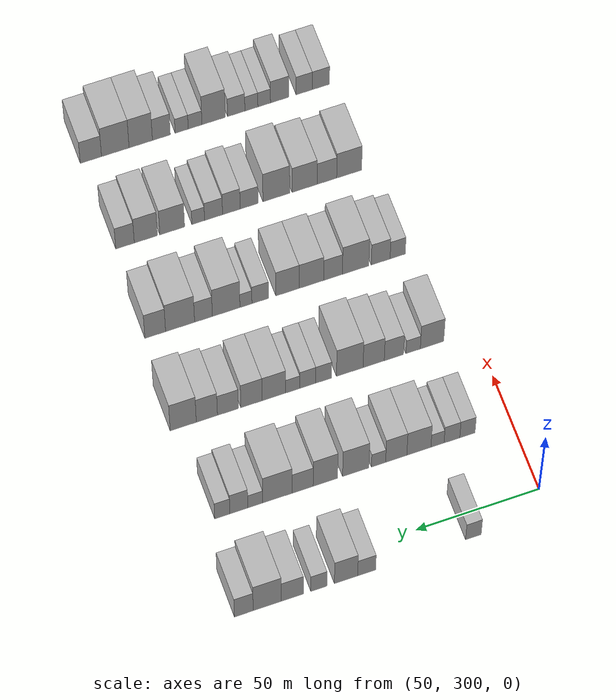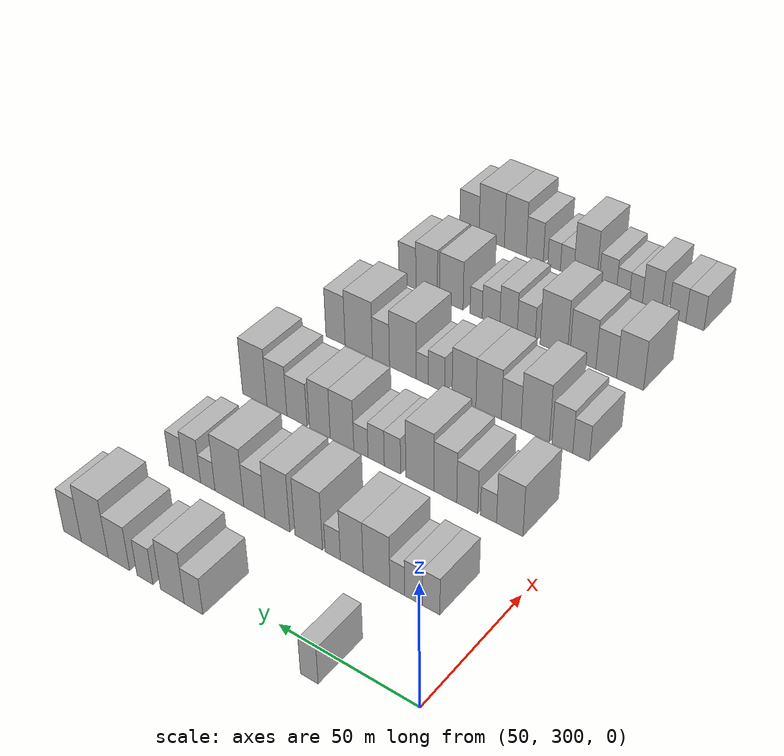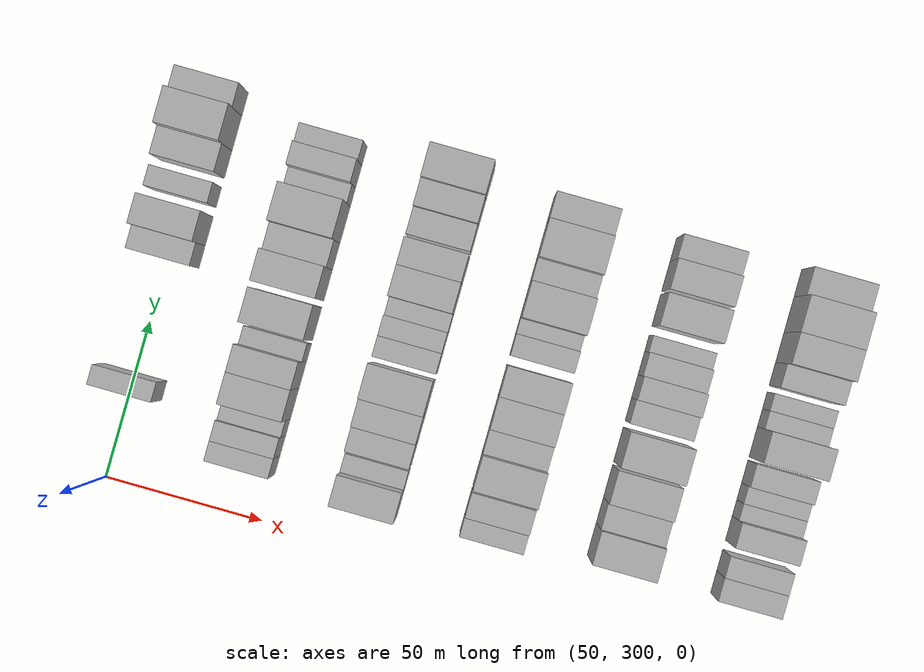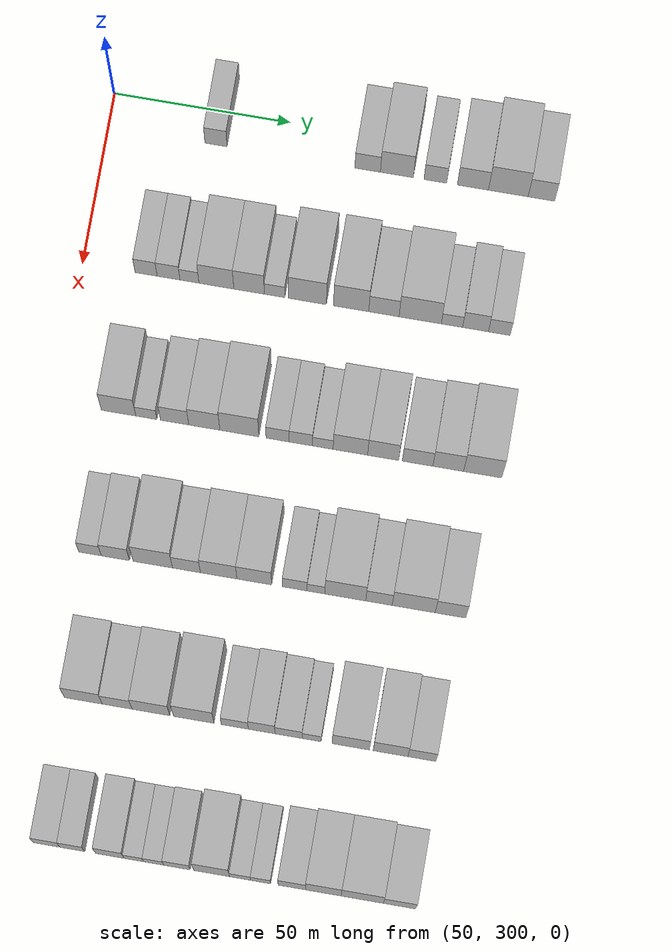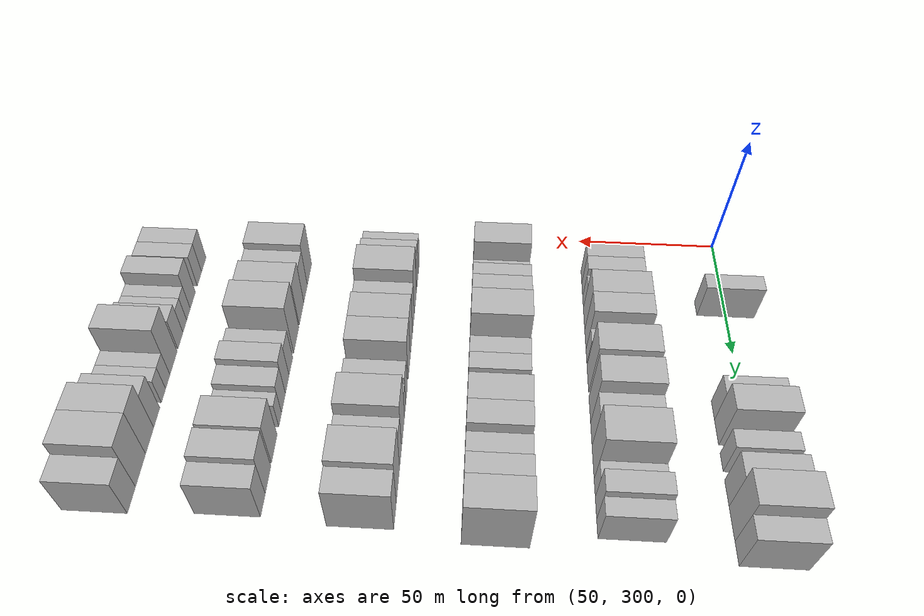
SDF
<sdf version="1.6">
 <world name="default">
  <model name="building_101">
   <static>1</static>
   <pose>50.0000 330.6214 0 0.000000 0.000000 0.000000</pose>
   <link name="link">
    <pose>0 0 7.50 0 0 0</pose>
    <collision name="collision"><geometry><box><size>20.0000 6.2988 15.0000</size></box></geometry></collision>
    <visual name="visual">
     <cast_shadows>0</cast_shadows>
     <geometry><box><size>20.0000 6.2988 15.0000</size></box></geometry>
     <material>
      <script>
       <uri>model://HANNAS_wall/materials/scripts</uri>
       <uri>model://HANNAS_wall/materials/textures</uri>
       <name>vrc/HANNAS_wall</name>
      </script>
     </material>
    </visual>
   </link>
  </model>
  <model name="building_102">
   <static>1</static>
   <pose>50.0000 373.6239 0 0.000000 0.000000 0.000000</pose>
   <link name="link">
    <pose>0 0 7.50 0 0 0</pose>
    <collision name="collision"><geometry><box><size>20.0000 7.2355 15.0000</size></box></geometry></collision>
    <visual name="visual">
     <cast_shadows>0</cast_shadows>
     <geometry><box><size>20.0000 7.2355 15.0000</size></box></geometry>
     <material>
      <script>
       <uri>model://HANNAS_wall/materials/scripts</uri>
       <uri>model://HANNAS_wall/materials/textures</uri>
       <name>vrc/HANNAS_wall</name>
      </script>
     </material>
    </visual>
   </link>
  </model>
  <model name="building_103">
   <static>1</static>
   <pose>50.0000 381.9095 0 0.000000 0.000000 0.000000</pose>
   <link name="link">
    <pose>0 0 10.50 0 0 0</pose>
    <collision name="collision"><geometry><box><size>20.0000 9.3357 21.0000</size></box></geometry></collision>
    <visual name="visual">
     <cast_shadows>0</cast_shadows>
     <geometry><box><size>20.0000 9.3357 21.0000</size></box></geometry>
     <material>
      <script>
       <uri>model://HANNAS_wall/materials/scripts</uri>
       <uri>model://HANNAS_wall/materials/textures</uri>
       <name>vrc/HANNAS_wall</name>
      </script>
     </material>
    </visual>
   </link>
  </model>
  <model name="building_104">
   <static>1</static>
   <pose>50.0000 392.7868 0 0.000000 0.000000 0.000000</pose>
   <link name="link">
    <pose>0 0 7.50 0 0 0</pose>
    <collision name="collision"><geometry><box><size>20.0000 6.4188 15.0000</size></box></geometry></collision>
    <visual name="visual">
     <cast_shadows>0</cast_shadows>
     <geometry><box><size>20.0000 6.4188 15.0000</size></box></geometry>
     <material>
      <script>
       <uri>model://HANNAS_wall/materials/scripts</uri>
       <uri>model://HANNAS_wall/materials/textures</uri>
       <name>vrc/HANNAS_wall</name>
      </script>
     </material>
    </visual>
   </link>
  </model>
  <model name="building_105">
   <static>1</static>
   <pose>50.0000 403.3970 0 0.000000 0.000000 0.000000</pose>
   <link name="link">
    <pose>0 0 9.00 0 0 0</pose>
    <collision name="collision"><geometry><box><size>20.0000 8.8015 18.0000</size></box></geometry></collision>
    <visual name="visual">
     <cast_shadows>0</cast_shadows>
     <geometry><box><size>20.0000 8.8015 18.0000</size></box></geometry>
     <material>
      <script>
       <uri>model://HANNAS_wall/materials/scripts</uri>
       <uri>model://HANNAS_wall/materials/textures</uri>
       <name>vrc/HANNAS_wall</name>
      </script>
     </material>
    </visual>
   </link>
  </model>
  <model name="building_106">
   <static>1</static>
   <pose>50.0000 413.3961 0 0.000000 0.000000 0.000000</pose>
   <link name="link">
    <pose>0 0 12.00 0 0 0</pose>
    <collision name="collision"><geometry><box><size>20.0000 11.1968 24.0000</size></box></geometry></collision>
    <visual name="visual">
     <cast_shadows>0</cast_shadows>
     <geometry><box><size>20.0000 11.1968 24.0000</size></box></geometry>
     <material>
      <script>
       <uri>model://HANNAS_wall/materials/scripts</uri>
       <uri>model://HANNAS_wall/materials/textures</uri>
       <name>vrc/HANNAS_wall</name>
      </script>
     </material>
    </visual>
   </link>
  </model>
  <model name="building_107">
   <static>1</static>
   <pose>50.0000 422.7425 0 0.000000 0.000000 0.000000</pose>
   <link name="link">
    <pose>0 0 9.00 0 0 0</pose>
    <collision name="collision"><geometry><box><size>20.0000 7.4959 18.0000</size></box></geometry></collision>
    <visual name="visual">
     <cast_shadows>0</cast_shadows>
     <geometry><box><size>20.0000 7.4959 18.0000</size></box></geometry>
     <material>
      <script>
       <uri>model://HANNAS_wall/materials/scripts</uri>
       <uri>model://HANNAS_wall/materials/textures</uri>
       <name>vrc/HANNAS_wall</name>
      </script>
     </material>
    </visual>
   </link>
  </model>
  <model name="building_233">
   <static>1</static>
   <pose>90.0000 318.0301 0 0.000000 0.000000 0.000000</pose>
   <link name="link">
    <pose>0 0 7.50 0 0 0</pose>
    <collision name="collision"><geometry><box><size>20.0000 6.2261 15.0000</size></box></geometry></collision>
    <visual name="visual">
     <cast_shadows>0</cast_shadows>
     <geometry><box><size>20.0000 6.2261 15.0000</size></box></geometry>
     <material>
      <script>
       <uri>model://HANNAS_wall/materials/scripts</uri>
       <uri>model://HANNAS_wall/materials/textures</uri>
       <name>vrc/HANNAS_wall</name>
      </script>
     </material>
    </visual>
   </link>
  </model>
  <model name="building_234">
   <static>1</static>
   <pose>90.0000 324.3517 0 0.000000 0.000000 0.000000</pose>
   <link name="link">
    <pose>0 0 7.50 0 0 0</pose>
    <collision name="collision"><geometry><box><size>20.0000 6.4171 15.0000</size></box></geometry></collision>
    <visual name="visual">
     <cast_shadows>0</cast_shadows>
     <geometry><box><size>20.0000 6.4171 15.0000</size></box></geometry>
     <material>
      <script>
       <uri>model://HANNAS_wall/materials/scripts</uri>
       <uri>model://HANNAS_wall/materials/textures</uri>
       <name>vrc/HANNAS_wall</name>
      </script>
     </material>
    </visual>
   </link>
  </model>
  <model name="building_235">
   <static>1</static>
   <pose>90.0000 330.2365 0 0.000000 0.000000 0.000000</pose>
   <link name="link">
    <pose>0 0 6.00 0 0 0</pose>
    <collision name="collision"><geometry><box><size>20.0000 5.3525 12.0000</size></box></geometry></collision>
    <visual name="visual">
     <cast_shadows>0</cast_shadows>
     <geometry><box><size>20.0000 5.3525 12.0000</size></box></geometry>
     <material>
      <script>
       <uri>model://HANNAS_wall/materials/scripts</uri>
       <uri>model://HANNAS_wall/materials/textures</uri>
       <name>vrc/HANNAS_wall</name>
      </script>
     </material>
    </visual>
   </link>
  </model>
  <model name="building_236">
   <static>1</static>
   <pose>90.0000 337.8178 0 0.000000 0.000000 0.000000</pose>
   <link name="link">
    <pose>0 0 10.50 0 0 0</pose>
    <collision name="collision"><geometry><box><size>20.0000 9.8101 21.0000</size></box></geometry></collision>
    <visual name="visual">
     <cast_shadows>0</cast_shadows>
     <geometry><box><size>20.0000 9.8101 21.0000</size></box></geometry>
     <material>
      <script>
       <uri>model://HANNAS_wall/materials/scripts</uri>
       <uri>model://HANNAS_wall/materials/textures</uri>
       <name>vrc/HANNAS_wall</name>
      </script>
     </material>
    </visual>
   </link>
  </model>
  <model name="building_237">
   <static>1</static>
   <pose>90.0000 347.0343 0 0.000000 0.000000 0.000000</pose>
   <link name="link">
    <pose>0 0 10.50 0 0 0</pose>
    <collision name="collision"><geometry><box><size>20.0000 8.6230 21.0000</size></box></geometry></collision>
    <visual name="visual">
     <cast_shadows>0</cast_shadows>
     <geometry><box><size>20.0000 8.6230 21.0000</size></box></geometry>
     <material>
      <script>
       <uri>model://HANNAS_wall/materials/scripts</uri>
       <uri>model://HANNAS_wall/materials/textures</uri>
       <name>vrc/HANNAS_wall</name>
      </script>
     </material>
    </visual>
   </link>
  </model>
  <model name="building_238">
   <static>1</static>
   <pose>90.0000 354.2292 0 0.000000 0.000000 0.000000</pose>
   <link name="link">
    <pose>0 0 6.00 0 0 0</pose>
    <collision name="collision"><geometry><box><size>20.0000 5.7667 12.0000</size></box></geometry></collision>
    <visual name="visual">
     <cast_shadows>0</cast_shadows>
     <geometry><box><size>20.0000 5.7667 12.0000</size></box></geometry>
     <material>
      <script>
       <uri>model://HANNAS_wall/materials/scripts</uri>
       <uri>model://HANNAS_wall/materials/textures</uri>
       <name>vrc/HANNAS_wall</name>
      </script>
     </material>
    </visual>
   </link>
  </model>
  <model name="building_239">
   <static>1</static>
   <pose>90.0000 363.4562 0 0.000000 0.000000 0.000000</pose>
   <link name="link">
    <pose>0 0 12.00 0 0 0</pose>
    <collision name="collision"><geometry><box><size>20.0000 10.6874 24.0000</size></box></geometry></collision>
    <visual name="visual">
     <cast_shadows>0</cast_shadows>
     <geometry><box><size>20.0000 10.6874 24.0000</size></box></geometry>
     <material>
      <script>
       <uri>model://HANNAS_wall/materials/scripts</uri>
       <uri>model://HANNAS_wall/materials/textures</uri>
       <name>vrc/HANNAS_wall</name>
      </script>
     </material>
    </visual>
   </link>
  </model>
  <model name="building_240">
   <static>1</static>
   <pose>90.0000 375.7469 0 0.000000 0.000000 0.000000</pose>
   <link name="link">
    <pose>0 0 12.00 0 0 0</pose>
    <collision name="collision"><geometry><box><size>20.0000 9.8940 24.0000</size></box></geometry></collision>
    <visual name="visual">
     <cast_shadows>0</cast_shadows>
     <geometry><box><size>20.0000 9.8940 24.0000</size></box></geometry>
     <material>
      <script>
       <uri>model://HANNAS_wall/materials/scripts</uri>
       <uri>model://HANNAS_wall/materials/textures</uri>
       <name>vrc/HANNAS_wall</name>
      </script>
     </material>
    </visual>
   </link>
  </model>
  <model name="building_241">
   <static>1</static>
   <pose>90.0000 384.9485 0 0.000000 0.000000 0.000000</pose>
   <link name="link">
    <pose>0 0 9.00 0 0 0</pose>
    <collision name="collision"><geometry><box><size>20.0000 8.5091 18.0000</size></box></geometry></collision>
    <visual name="visual">
     <cast_shadows>0</cast_shadows>
     <geometry><box><size>20.0000 8.5091 18.0000</size></box></geometry>
     <material>
      <script>
       <uri>model://HANNAS_wall/materials/scripts</uri>
       <uri>model://HANNAS_wall/materials/textures</uri>
       <name>vrc/HANNAS_wall</name>
      </script>
     </material>
    </visual>
   </link>
  </model>
  <model name="building_242">
   <static>1</static>
   <pose>90.0000 395.1212 0 0.000000 0.000000 0.000000</pose>
   <link name="link">
    <pose>0 0 12.00 0 0 0</pose>
    <collision name="collision"><geometry><box><size>20.0000 11.8363 24.0000</size></box></geometry></collision>
    <visual name="visual">
     <cast_shadows>0</cast_shadows>
     <geometry><box><size>20.0000 11.8363 24.0000</size></box></geometry>
     <material>
      <script>
       <uri>model://HANNAS_wall/materials/scripts</uri>
       <uri>model://HANNAS_wall/materials/textures</uri>
       <name>vrc/HANNAS_wall</name>
      </script>
     </material>
    </visual>
   </link>
  </model>
  <model name="building_243">
   <static>1</static>
   <pose>90.0000 404.0355 0 0.000000 0.000000 0.000000</pose>
   <link name="link">
    <pose>0 0 6.00 0 0 0</pose>
    <collision name="collision"><geometry><box><size>20.0000 5.9922 12.0000</size></box></geometry></collision>
    <visual name="visual">
     <cast_shadows>0</cast_shadows>
     <geometry><box><size>20.0000 5.9922 12.0000</size></box></geometry>
     <material>
      <script>
       <uri>model://HANNAS_wall/materials/scripts</uri>
       <uri>model://HANNAS_wall/materials/textures</uri>
       <name>vrc/HANNAS_wall</name>
      </script>
     </material>
    </visual>
   </link>
  </model>
  <model name="building_244">
   <static>1</static>
   <pose>90.0000 410.6411 0 0.000000 0.000000 0.000000</pose>
   <link name="link">
    <pose>0 0 9.00 0 0 0</pose>
    <collision name="collision"><geometry><box><size>20.0000 7.2190 18.0000</size></box></geometry></collision>
    <visual name="visual">
     <cast_shadows>0</cast_shadows>
     <geometry><box><size>20.0000 7.2190 18.0000</size></box></geometry>
     <material>
      <script>
       <uri>model://HANNAS_wall/materials/scripts</uri>
       <uri>model://HANNAS_wall/materials/textures</uri>
       <name>vrc/HANNAS_wall</name>
      </script>
     </material>
    </visual>
   </link>
  </model>
  <model name="building_245">
   <static>1</static>
   <pose>90.0000 417.3107 0 0.000000 0.000000 0.000000</pose>
   <link name="link">
    <pose>0 0 7.50 0 0 0</pose>
    <collision name="collision"><geometry><box><size>20.0000 6.1203 15.0000</size></box></geometry></collision>
    <visual name="visual">
     <cast_shadows>0</cast_shadows>
     <geometry><box><size>20.0000 6.1203 15.0000</size></box></geometry>
     <material>
      <script>
       <uri>model://HANNAS_wall/materials/scripts</uri>
       <uri>model://HANNAS_wall/materials/textures</uri>
       <name>vrc/HANNAS_wall</name>
      </script>
     </material>
    </visual>
   </link>
  </model>
  <model name="building_374">
   <static>1</static>
   <pose>130.0000 317.5948 0 0.000000 0.000000 0.000000</pose>
   <link name="link">
    <pose>0 0 10.50 0 0 0</pose>
    <collision name="collision"><geometry><box><size>20.0000 9.6400 21.0000</size></box></geometry></collision>
    <visual name="visual">
     <cast_shadows>0</cast_shadows>
     <geometry><box><size>20.0000 9.6400 21.0000</size></box></geometry>
     <material>
      <script>
       <uri>model://HANNAS_wall/materials/scripts</uri>
       <uri>model://HANNAS_wall/materials/textures</uri>
       <name>vrc/HANNAS_wall</name>
      </script>
     </material>
    </visual>
   </link>
  </model>
  <model name="building_375">
   <static>1</static>
   <pose>130.0000 325.3711 0 0.000000 0.000000 0.000000</pose>
   <link name="link">
    <pose>0 0 6.00 0 0 0</pose>
    <collision name="collision"><geometry><box><size>20.0000 5.9127 12.0000</size></box></geometry></collision>
    <visual name="visual">
     <cast_shadows>0</cast_shadows>
     <geometry><box><size>20.0000 5.9127 12.0000</size></box></geometry>
     <material>
      <script>
       <uri>model://HANNAS_wall/materials/scripts</uri>
       <uri>model://HANNAS_wall/materials/textures</uri>
       <name>vrc/HANNAS_wall</name>
      </script>
     </material>
    </visual>
   </link>
  </model>
  <model name="building_376">
   <static>1</static>
   <pose>130.0000 333.2766 0 0.000000 0.000000 0.000000</pose>
   <link name="link">
    <pose>0 0 9.00 0 0 0</pose>
    <collision name="collision"><geometry><box><size>20.0000 7.8982 18.0000</size></box></geometry></collision>
    <visual name="visual">
     <cast_shadows>0</cast_shadows>
     <geometry><box><size>20.0000 7.8982 18.0000</size></box></geometry>
     <material>
      <script>
       <uri>model://HANNAS_wall/materials/scripts</uri>
       <uri>model://HANNAS_wall/materials/textures</uri>
       <name>vrc/HANNAS_wall</name>
      </script>
     </material>
    </visual>
   </link>
  </model>
  <model name="building_377">
   <static>1</static>
   <pose>130.0000 341.5682 0 0.000000 0.000000 0.000000</pose>
   <link name="link">
    <pose>0 0 10.50 0 0 0</pose>
    <collision name="collision"><geometry><box><size>20.0000 8.6850 21.0000</size></box></geometry></collision>
    <visual name="visual">
     <cast_shadows>0</cast_shadows>
     <geometry><box><size>20.0000 8.6850 21.0000</size></box></geometry>
     <material>
      <script>
       <uri>model://HANNAS_wall/materials/scripts</uri>
       <uri>model://HANNAS_wall/materials/textures</uri>
       <name>vrc/HANNAS_wall</name>
      </script>
     </material>
    </visual>
   </link>
  </model>
  <model name="building_378">
   <static>1</static>
   <pose>130.0000 351.3577 0 0.000000 0.000000 0.000000</pose>
   <link name="link">
    <pose>0 0 12.00 0 0 0</pose>
    <collision name="collision"><geometry><box><size>20.0000 10.8939 24.0000</size></box></geometry></collision>
    <visual name="visual">
     <cast_shadows>0</cast_shadows>
     <geometry><box><size>20.0000 10.8939 24.0000</size></box></geometry>
     <material>
      <script>
       <uri>model://HANNAS_wall/materials/scripts</uri>
       <uri>model://HANNAS_wall/materials/textures</uri>
       <name>vrc/HANNAS_wall</name>
      </script>
     </material>
    </visual>
   </link>
  </model>
  <model name="building_379">
   <static>1</static>
   <pose>130.0000 362.0340 0 0.000000 0.000000 0.000000</pose>
   <link name="link">
    <pose>0 0 7.50 0 0 0</pose>
    <collision name="collision"><geometry><box><size>20.0000 6.4586 15.0000</size></box></geometry></collision>
    <visual name="visual">
     <cast_shadows>0</cast_shadows>
     <geometry><box><size>20.0000 6.4586 15.0000</size></box></geometry>
     <material>
      <script>
       <uri>model://HANNAS_wall/materials/scripts</uri>
       <uri>model://HANNAS_wall/materials/textures</uri>
       <name>vrc/HANNAS_wall</name>
      </script>
     </material>
    </visual>
   </link>
  </model>
  <model name="building_380">
   <static>1</static>
   <pose>130.0000 368.5137 0 0.000000 0.000000 0.000000</pose>
   <link name="link">
    <pose>0 0 7.50 0 0 0</pose>
    <collision name="collision"><geometry><box><size>20.0000 6.5008 15.0000</size></box></geometry></collision>
    <visual name="visual">
     <cast_shadows>0</cast_shadows>
     <geometry><box><size>20.0000 6.5008 15.0000</size></box></geometry>
     <material>
      <script>
       <uri>model://HANNAS_wall/materials/scripts</uri>
       <uri>model://HANNAS_wall/materials/textures</uri>
       <name>vrc/HANNAS_wall</name>
      </script>
     </material>
    </visual>
   </link>
  </model>
  <model name="building_381">
   <static>1</static>
   <pose>130.0000 374.6399 0 0.000000 0.000000 0.000000</pose>
   <link name="link">
    <pose>0 0 6.00 0 0 0</pose>
    <collision name="collision"><geometry><box><size>20.0000 5.7516 12.0000</size></box></geometry></collision>
    <visual name="visual">
     <cast_shadows>0</cast_shadows>
     <geometry><box><size>20.0000 5.7516 12.0000</size></box></geometry>
     <material>
      <script>
       <uri>model://HANNAS_wall/materials/scripts</uri>
       <uri>model://HANNAS_wall/materials/textures</uri>
       <name>vrc/HANNAS_wall</name>
      </script>
     </material>
    </visual>
   </link>
  </model>
  <model name="building_382">
   <static>1</static>
   <pose>130.0000 382.3277 0 0.000000 0.000000 0.000000</pose>
   <link name="link">
    <pose>0 0 10.50 0 0 0</pose>
    <collision name="collision"><geometry><box><size>20.0000 9.6239 21.0000</size></box></geometry></collision>
    <visual name="visual">
     <cast_shadows>0</cast_shadows>
     <geometry><box><size>20.0000 9.6239 21.0000</size></box></geometry>
     <material>
      <script>
       <uri>model://HANNAS_wall/materials/scripts</uri>
       <uri>model://HANNAS_wall/materials/textures</uri>
       <name>vrc/HANNAS_wall</name>
      </script>
     </material>
    </visual>
   </link>
  </model>
  <model name="building_383">
   <static>1</static>
   <pose>130.0000 391.4639 0 0.000000 0.000000 0.000000</pose>
   <link name="link">
    <pose>0 0 10.50 0 0 0</pose>
    <collision name="collision"><geometry><box><size>20.0000 8.6486 21.0000</size></box></geometry></collision>
    <visual name="visual">
     <cast_shadows>0</cast_shadows>
     <geometry><box><size>20.0000 8.6486 21.0000</size></box></geometry>
     <material>
      <script>
       <uri>model://HANNAS_wall/materials/scripts</uri>
       <uri>model://HANNAS_wall/materials/textures</uri>
       <name>vrc/HANNAS_wall</name>
      </script>
     </material>
    </visual>
   </link>
  </model>
  <model name="building_384">
   <static>1</static>
   <pose>130.0000 401.0364 0 0.000000 0.000000 0.000000</pose>
   <link name="link">
    <pose>0 0 9.00 0 0 0</pose>
    <collision name="collision"><geometry><box><size>20.0000 8.4963 18.0000</size></box></geometry></collision>
    <visual name="visual">
     <cast_shadows>0</cast_shadows>
     <geometry><box><size>20.0000 8.4963 18.0000</size></box></geometry>
     <material>
      <script>
       <uri>model://HANNAS_wall/materials/scripts</uri>
       <uri>model://HANNAS_wall/materials/textures</uri>
       <name>vrc/HANNAS_wall</name>
      </script>
     </material>
    </visual>
   </link>
  </model>
  <model name="building_385">
   <static>1</static>
   <pose>130.0000 409.5737 0 0.000000 0.000000 0.000000</pose>
   <link name="link">
    <pose>0 0 10.50 0 0 0</pose>
    <collision name="collision"><geometry><box><size>20.0000 8.5783 21.0000</size></box></geometry></collision>
    <visual name="visual">
     <cast_shadows>0</cast_shadows>
     <geometry><box><size>20.0000 8.5783 21.0000</size></box></geometry>
     <material>
      <script>
       <uri>model://HANNAS_wall/materials/scripts</uri>
       <uri>model://HANNAS_wall/materials/textures</uri>
       <name>vrc/HANNAS_wall</name>
      </script>
     </material>
    </visual>
   </link>
  </model>
  <model name="building_386">
   <static>1</static>
   <pose>130.0000 419.1543 0 0.000000 0.000000 0.000000</pose>
   <link name="link">
    <pose>0 0 12.00 0 0 0</pose>
    <collision name="collision"><geometry><box><size>20.0000 10.5829 24.0000</size></box></geometry></collision>
    <visual name="visual">
     <cast_shadows>0</cast_shadows>
     <geometry><box><size>20.0000 10.5829 24.0000</size></box></geometry>
     <material>
      <script>
       <uri>model://HANNAS_wall/materials/scripts</uri>
       <uri>model://HANNAS_wall/materials/textures</uri>
       <name>vrc/HANNAS_wall</name>
      </script>
     </material>
    </visual>
   </link>
  </model>
  <model name="building_513">
   <static>1</static>
   <pose>170.0000 316.9971 0 0.000000 0.000000 0.000000</pose>
   <link name="link">
    <pose>0 0 7.50 0 0 0</pose>
    <collision name="collision"><geometry><box><size>20.0000 6.2766 15.0000</size></box></geometry></collision>
    <visual name="visual">
     <cast_shadows>0</cast_shadows>
     <geometry><box><size>20.0000 6.2766 15.0000</size></box></geometry>
     <material>
      <script>
       <uri>model://HANNAS_wall/materials/scripts</uri>
       <uri>model://HANNAS_wall/materials/textures</uri>
       <name>vrc/HANNAS_wall</name>
      </script>
     </material>
    </visual>
   </link>
  </model>
  <model name="building_514">
   <static>1</static>
   <pose>170.0000 324.0505 0 0.000000 0.000000 0.000000</pose>
   <link name="link">
    <pose>0 0 9.00 0 0 0</pose>
    <collision name="collision"><geometry><box><size>20.0000 7.8302 18.0000</size></box></geometry></collision>
    <visual name="visual">
     <cast_shadows>0</cast_shadows>
     <geometry><box><size>20.0000 7.8302 18.0000</size></box></geometry>
     <material>
      <script>
       <uri>model://HANNAS_wall/materials/scripts</uri>
       <uri>model://HANNAS_wall/materials/textures</uri>
       <name>vrc/HANNAS_wall</name>
      </script>
     </material>
    </visual>
   </link>
  </model>
  <model name="building_515">
   <static>1</static>
   <pose>170.0000 334.4318 0 0.000000 0.000000 0.000000</pose>
   <link name="link">
    <pose>0 0 12.00 0 0 0</pose>
    <collision name="collision"><geometry><box><size>20.0000 10.9324 24.0000</size></box></geometry></collision>
    <visual name="visual">
     <cast_shadows>0</cast_shadows>
     <geometry><box><size>20.0000 10.9324 24.0000</size></box></geometry>
     <material>
      <script>
       <uri>model://HANNAS_wall/materials/scripts</uri>
       <uri>model://HANNAS_wall/materials/textures</uri>
       <name>vrc/HANNAS_wall</name>
      </script>
     </material>
    </visual>
   </link>
  </model>
  <model name="building_516">
   <static>1</static>
   <pose>170.0000 343.7627 0 0.000000 0.000000 0.000000</pose>
   <link name="link">
    <pose>0 0 9.00 0 0 0</pose>
    <collision name="collision"><geometry><box><size>20.0000 7.7295 18.0000</size></box></geometry></collision>
    <visual name="visual">
     <cast_shadows>0</cast_shadows>
     <geometry><box><size>20.0000 7.7295 18.0000</size></box></geometry>
     <material>
      <script>
       <uri>model://HANNAS_wall/materials/scripts</uri>
       <uri>model://HANNAS_wall/materials/textures</uri>
       <name>vrc/HANNAS_wall</name>
      </script>
     </material>
    </visual>
   </link>
  </model>
  <model name="building_517">
   <static>1</static>
   <pose>170.0000 352.6747 0 0.000000 0.000000 0.000000</pose>
   <link name="link">
    <pose>0 0 10.50 0 0 0</pose>
    <collision name="collision"><geometry><box><size>20.0000 10.0945 21.0000</size></box></geometry></collision>
    <visual name="visual">
     <cast_shadows>0</cast_shadows>
     <geometry><box><size>20.0000 10.0945 21.0000</size></box></geometry>
     <material>
      <script>
       <uri>model://HANNAS_wall/materials/scripts</uri>
       <uri>model://HANNAS_wall/materials/textures</uri>
       <name>vrc/HANNAS_wall</name>
      </script>
     </material>
    </visual>
   </link>
  </model>
  <model name="building_518">
   <static>1</static>
   <pose>170.0000 362.5321 0 0.000000 0.000000 0.000000</pose>
   <link name="link">
    <pose>0 0 10.50 0 0 0</pose>
    <collision name="collision"><geometry><box><size>20.0000 9.6202 21.0000</size></box></geometry></collision>
    <visual name="visual">
     <cast_shadows>0</cast_shadows>
     <geometry><box><size>20.0000 9.6202 21.0000</size></box></geometry>
     <material>
      <script>
       <uri>model://HANNAS_wall/materials/scripts</uri>
       <uri>model://HANNAS_wall/materials/textures</uri>
       <name>vrc/HANNAS_wall</name>
      </script>
     </material>
    </visual>
   </link>
  </model>
  <model name="building_519">
   <static>1</static>
   <pose>170.0000 373.7562 0 0.000000 0.000000 0.000000</pose>
   <link name="link">
    <pose>0 0 7.50 0 0 0</pose>
    <collision name="collision"><geometry><box><size>20.0000 6.8281 15.0000</size></box></geometry></collision>
    <visual name="visual">
     <cast_shadows>0</cast_shadows>
     <geometry><box><size>20.0000 6.8281 15.0000</size></box></geometry>
     <material>
      <script>
       <uri>model://HANNAS_wall/materials/scripts</uri>
       <uri>model://HANNAS_wall/materials/textures</uri>
       <name>vrc/HANNAS_wall</name>
      </script>
     </material>
    </visual>
   </link>
  </model>
  <model name="building_520">
   <static>1</static>
   <pose>170.0000 379.6270 0 0.000000 0.000000 0.000000</pose>
   <link name="link">
    <pose>0 0 6.00 0 0 0</pose>
    <collision name="collision"><geometry><box><size>20.0000 4.9136 12.0000</size></box></geometry></collision>
    <visual name="visual">
     <cast_shadows>0</cast_shadows>
     <geometry><box><size>20.0000 4.9136 12.0000</size></box></geometry>
     <material>
      <script>
       <uri>model://HANNAS_wall/materials/scripts</uri>
       <uri>model://HANNAS_wall/materials/textures</uri>
       <name>vrc/HANNAS_wall</name>
      </script>
     </material>
    </visual>
   </link>
  </model>
  <model name="building_521">
   <static>1</static>
   <pose>170.0000 387.7376 0 0.000000 0.000000 0.000000</pose>
   <link name="link">
    <pose>0 0 12.00 0 0 0</pose>
    <collision name="collision"><geometry><box><size>20.0000 11.3075 24.0000</size></box></geometry></collision>
    <visual name="visual">
     <cast_shadows>0</cast_shadows>
     <geometry><box><size>20.0000 11.3075 24.0000</size></box></geometry>
     <material>
      <script>
       <uri>model://HANNAS_wall/materials/scripts</uri>
       <uri>model://HANNAS_wall/materials/textures</uri>
       <name>vrc/HANNAS_wall</name>
      </script>
     </material>
    </visual>
   </link>
  </model>
  <model name="building_522">
   <static>1</static>
   <pose>170.0000 397.0326 0 0.000000 0.000000 0.000000</pose>
   <link name="link">
    <pose>0 0 9.00 0 0 0</pose>
    <collision name="collision"><geometry><box><size>20.0000 7.2826 18.0000</size></box></geometry></collision>
    <visual name="visual">
     <cast_shadows>0</cast_shadows>
     <geometry><box><size>20.0000 7.2826 18.0000</size></box></geometry>
     <material>
      <script>
       <uri>model://HANNAS_wall/materials/scripts</uri>
       <uri>model://HANNAS_wall/materials/textures</uri>
       <name>vrc/HANNAS_wall</name>
      </script>
     </material>
    </visual>
   </link>
  </model>
  <model name="building_523">
   <static>1</static>
   <pose>170.0000 406.6101 0 0.000000 0.000000 0.000000</pose>
   <link name="link">
    <pose>0 0 12.00 0 0 0</pose>
    <collision name="collision"><geometry><box><size>20.0000 11.8724 24.0000</size></box></geometry></collision>
    <visual name="visual">
     <cast_shadows>0</cast_shadows>
     <geometry><box><size>20.0000 11.8724 24.0000</size></box></geometry>
     <material>
      <script>
       <uri>model://HANNAS_wall/materials/scripts</uri>
       <uri>model://HANNAS_wall/materials/textures</uri>
       <name>vrc/HANNAS_wall</name>
      </script>
     </material>
    </visual>
   </link>
  </model>
  <model name="building_524">
   <static>1</static>
   <pose>170.0000 416.7745 0 0.000000 0.000000 0.000000</pose>
   <link name="link">
    <pose>0 0 10.50 0 0 0</pose>
    <collision name="collision"><geometry><box><size>20.0000 8.4566 21.0000</size></box></geometry></collision>
    <visual name="visual">
     <cast_shadows>0</cast_shadows>
     <geometry><box><size>20.0000 8.4566 21.0000</size></box></geometry>
     <material>
      <script>
       <uri>model://HANNAS_wall/materials/scripts</uri>
       <uri>model://HANNAS_wall/materials/textures</uri>
       <name>vrc/HANNAS_wall</name>
      </script>
     </material>
    </visual>
   </link>
  </model>
  <model name="building_657">
   <static>1</static>
   <pose>210.0000 322.5721 0 0.000000 0.000000 0.000000</pose>
   <link name="link">
    <pose>0 0 10.50 0 0 0</pose>
    <collision name="collision"><geometry><box><size>20.0000 10.4071 21.0000</size></box></geometry></collision>
    <visual name="visual">
     <cast_shadows>0</cast_shadows>
     <geometry><box><size>20.0000 10.4071 21.0000</size></box></geometry>
     <material>
      <script>
       <uri>model://HANNAS_wall/materials/scripts</uri>
       <uri>model://HANNAS_wall/materials/textures</uri>
       <name>vrc/HANNAS_wall</name>
      </script>
     </material>
    </visual>
   </link>
  </model>
  <model name="building_658">
   <static>1</static>
   <pose>210.0000 331.8721 0 0.000000 0.000000 0.000000</pose>
   <link name="link">
    <pose>0 0 9.00 0 0 0</pose>
    <collision name="collision"><geometry><box><size>20.0000 8.1927 18.0000</size></box></geometry></collision>
    <visual name="visual">
     <cast_shadows>0</cast_shadows>
     <geometry><box><size>20.0000 8.1927 18.0000</size></box></geometry>
     <material>
      <script>
       <uri>model://HANNAS_wall/materials/scripts</uri>
       <uri>model://HANNAS_wall/materials/textures</uri>
       <name>vrc/HANNAS_wall</name>
      </script>
     </material>
    </visual>
   </link>
  </model>
  <model name="building_659">
   <static>1</static>
   <pose>210.0000 341.1658 0 0.000000 0.000000 0.000000</pose>
   <link name="link">
    <pose>0 0 10.50 0 0 0</pose>
    <collision name="collision"><geometry><box><size>20.0000 10.3947 21.0000</size></box></geometry></collision>
    <visual name="visual">
     <cast_shadows>0</cast_shadows>
     <geometry><box><size>20.0000 10.3947 21.0000</size></box></geometry>
     <material>
      <script>
       <uri>model://HANNAS_wall/materials/scripts</uri>
       <uri>model://HANNAS_wall/materials/textures</uri>
       <name>vrc/HANNAS_wall</name>
      </script>
     </material>
    </visual>
   </link>
  </model>
  <model name="building_660">
   <static>1</static>
   <pose>210.0000 352.9219 0 0.000000 0.000000 0.000000</pose>
   <link name="link">
    <pose>0 0 12.00 0 0 0</pose>
    <collision name="collision"><geometry><box><size>20.0000 11.1176 24.0000</size></box></geometry></collision>
    <visual name="visual">
     <cast_shadows>0</cast_shadows>
     <geometry><box><size>20.0000 11.1176 24.0000</size></box></geometry>
     <material>
      <script>
       <uri>model://HANNAS_wall/materials/scripts</uri>
       <uri>model://HANNAS_wall/materials/textures</uri>
       <name>vrc/HANNAS_wall</name>
      </script>
     </material>
    </visual>
   </link>
  </model>
  <model name="building_661">
   <static>1</static>
   <pose>210.0000 364.1984 0 0.000000 0.000000 0.000000</pose>
   <link name="link">
    <pose>0 0 7.50 0 0 0</pose>
    <collision name="collision"><geometry><box><size>20.0000 7.4355 15.0000</size></box></geometry></collision>
    <visual name="visual">
     <cast_shadows>0</cast_shadows>
     <geometry><box><size>20.0000 7.4355 15.0000</size></box></geometry>
     <material>
      <script>
       <uri>model://HANNAS_wall/materials/scripts</uri>
       <uri>model://HANNAS_wall/materials/textures</uri>
       <name>vrc/HANNAS_wall</name>
      </script>
     </material>
    </visual>
   </link>
  </model>
  <model name="building_662">
   <static>1</static>
   <pose>210.0000 371.5751 0 0.000000 0.000000 0.000000</pose>
   <link name="link">
    <pose>0 0 9.00 0 0 0</pose>
    <collision name="collision"><geometry><box><size>20.0000 7.3179 18.0000</size></box></geometry></collision>
    <visual name="visual">
     <cast_shadows>0</cast_shadows>
     <geometry><box><size>20.0000 7.3179 18.0000</size></box></geometry>
     <material>
      <script>
       <uri>model://HANNAS_wall/materials/scripts</uri>
       <uri>model://HANNAS_wall/materials/textures</uri>
       <name>vrc/HANNAS_wall</name>
      </script>
     </material>
    </visual>
   </link>
  </model>
  <model name="building_663">
   <static>1</static>
   <pose>210.0000 378.9561 0 0.000000 0.000000 0.000000</pose>
   <link name="link">
    <pose>0 0 7.50 0 0 0</pose>
    <collision name="collision"><geometry><box><size>20.0000 7.4441 15.0000</size></box></geometry></collision>
    <visual name="visual">
     <cast_shadows>0</cast_shadows>
     <geometry><box><size>20.0000 7.4441 15.0000</size></box></geometry>
     <material>
      <script>
       <uri>model://HANNAS_wall/materials/scripts</uri>
       <uri>model://HANNAS_wall/materials/textures</uri>
       <name>vrc/HANNAS_wall</name>
      </script>
     </material>
    </visual>
   </link>
  </model>
  <model name="building_664">
   <static>1</static>
   <pose>210.0000 385.2959 0 0.000000 0.000000 0.000000</pose>
   <link name="link">
    <pose>0 0 6.00 0 0 0</pose>
    <collision name="collision"><geometry><box><size>20.0000 5.2353 12.0000</size></box></geometry></collision>
    <visual name="visual">
     <cast_shadows>0</cast_shadows>
     <geometry><box><size>20.0000 5.2353 12.0000</size></box></geometry>
     <material>
      <script>
       <uri>model://HANNAS_wall/materials/scripts</uri>
       <uri>model://HANNAS_wall/materials/textures</uri>
       <name>vrc/HANNAS_wall</name>
      </script>
     </material>
    </visual>
   </link>
  </model>
  <model name="building_665">
   <static>1</static>
   <pose>210.0000 396.0381 0 0.000000 0.000000 0.000000</pose>
   <link name="link">
    <pose>0 0 10.50 0 0 0</pose>
    <collision name="collision"><geometry><box><size>20.0000 10.2492 21.0000</size></box></geometry></collision>
    <visual name="visual">
     <cast_shadows>0</cast_shadows>
     <geometry><box><size>20.0000 10.2492 21.0000</size></box></geometry>
     <material>
      <script>
       <uri>model://HANNAS_wall/materials/scripts</uri>
       <uri>model://HANNAS_wall/materials/textures</uri>
       <name>vrc/HANNAS_wall</name>
      </script>
     </material>
    </visual>
   </link>
  </model>
  <model name="building_666">
   <static>1</static>
   <pose>210.0000 406.9205 0 0.000000 0.000000 0.000000</pose>
   <link name="link">
    <pose>0 0 10.50 0 0 0</pose>
    <collision name="collision"><geometry><box><size>20.0000 9.5155 21.0000</size></box></geometry></collision>
    <visual name="visual">
     <cast_shadows>0</cast_shadows>
     <geometry><box><size>20.0000 9.5155 21.0000</size></box></geometry>
     <material>
      <script>
       <uri>model://HANNAS_wall/materials/scripts</uri>
       <uri>model://HANNAS_wall/materials/textures</uri>
       <name>vrc/HANNAS_wall</name>
      </script>
     </material>
    </visual>
   </link>
  </model>
  <model name="building_667">
   <static>1</static>
   <pose>210.0000 415.5021 0 0.000000 0.000000 0.000000</pose>
   <link name="link">
    <pose>0 0 9.00 0 0 0</pose>
    <collision name="collision"><geometry><box><size>20.0000 7.6478 18.0000</size></box></geometry></collision>
    <visual name="visual">
     <cast_shadows>0</cast_shadows>
     <geometry><box><size>20.0000 7.6478 18.0000</size></box></geometry>
     <material>
      <script>
       <uri>model://HANNAS_wall/materials/scripts</uri>
       <uri>model://HANNAS_wall/materials/textures</uri>
       <name>vrc/HANNAS_wall</name>
      </script>
     </material>
    </visual>
   </link>
  </model>
  <model name="building_790">
   <static>1</static>
   <pose>250.0000 319.9937 0 0.000000 0.000000 0.000000</pose>
   <link name="link">
    <pose>0 0 7.50 0 0 0</pose>
    <collision name="collision"><geometry><box><size>20.0000 7.2401 15.0000</size></box></geometry></collision>
    <visual name="visual">
     <cast_shadows>0</cast_shadows>
     <geometry><box><size>20.0000 7.2401 15.0000</size></box></geometry>
     <material>
      <script>
       <uri>model://HANNAS_wall/materials/scripts</uri>
       <uri>model://HANNAS_wall/materials/textures</uri>
       <name>vrc/HANNAS_wall</name>
      </script>
     </material>
    </visual>
   </link>
  </model>
  <model name="building_791">
   <static>1</static>
   <pose>250.0000 326.9892 0 0.000000 0.000000 0.000000</pose>
   <link name="link">
    <pose>0 0 7.50 0 0 0</pose>
    <collision name="collision"><geometry><box><size>20.0000 6.7510 15.0000</size></box></geometry></collision>
    <visual name="visual">
     <cast_shadows>0</cast_shadows>
     <geometry><box><size>20.0000 6.7510 15.0000</size></box></geometry>
     <material>
      <script>
       <uri>model://HANNAS_wall/materials/scripts</uri>
       <uri>model://HANNAS_wall/materials/textures</uri>
       <name>vrc/HANNAS_wall</name>
      </script>
     </material>
    </visual>
   </link>
  </model>
  <model name="building_792">
   <static>1</static>
   <pose>250.0000 337.2587 0 0.000000 0.000000 0.000000</pose>
   <link name="link">
    <pose>0 0 9.00 0 0 0</pose>
    <collision name="collision"><geometry><box><size>20.0000 7.7878 18.0000</size></box></geometry></collision>
    <visual name="visual">
     <cast_shadows>0</cast_shadows>
     <geometry><box><size>20.0000 7.7878 18.0000</size></box></geometry>
     <material>
      <script>
       <uri>model://HANNAS_wall/materials/scripts</uri>
       <uri>model://HANNAS_wall/materials/textures</uri>
       <name>vrc/HANNAS_wall</name>
      </script>
     </material>
    </visual>
   </link>
  </model>
  <model name="building_793">
   <static>1</static>
   <pose>250.0000 343.7937 0 0.000000 0.000000 0.000000</pose>
   <link name="link">
    <pose>0 0 6.00 0 0 0</pose>
    <collision name="collision"><geometry><box><size>20.0000 5.2821 12.0000</size></box></geometry></collision>
    <visual name="visual">
     <cast_shadows>0</cast_shadows>
     <geometry><box><size>20.0000 5.2821 12.0000</size></box></geometry>
     <material>
      <script>
       <uri>model://HANNAS_wall/materials/scripts</uri>
       <uri>model://HANNAS_wall/materials/textures</uri>
       <name>vrc/HANNAS_wall</name>
      </script>
     </material>
    </visual>
   </link>
  </model>
  <model name="building_794">
   <static>1</static>
   <pose>250.0000 349.1613 0 0.000000 0.000000 0.000000</pose>
   <link name="link">
    <pose>0 0 6.00 0 0 0</pose>
    <collision name="collision"><geometry><box><size>20.0000 5.4531 12.0000</size></box></geometry></collision>
    <visual name="visual">
     <cast_shadows>0</cast_shadows>
     <geometry><box><size>20.0000 5.4531 12.0000</size></box></geometry>
     <material>
      <script>
       <uri>model://HANNAS_wall/materials/scripts</uri>
       <uri>model://HANNAS_wall/materials/textures</uri>
       <name>vrc/HANNAS_wall</name>
      </script>
     </material>
    </visual>
   </link>
  </model>
  <model name="building_795">
   <static>1</static>
   <pose>250.0000 355.5098 0 0.000000 0.000000 0.000000</pose>
   <link name="link">
    <pose>0 0 7.50 0 0 0</pose>
    <collision name="collision"><geometry><box><size>20.0000 7.2440 15.0000</size></box></geometry></collision>
    <visual name="visual">
     <cast_shadows>0</cast_shadows>
     <geometry><box><size>20.0000 7.2440 15.0000</size></box></geometry>
     <material>
      <script>
       <uri>model://HANNAS_wall/materials/scripts</uri>
       <uri>model://HANNAS_wall/materials/textures</uri>
       <name>vrc/HANNAS_wall</name>
      </script>
     </material>
    </visual>
   </link>
  </model>
  <model name="building_796">
   <static>1</static>
   <pose>250.0000 364.9959 0 0.000000 0.000000 0.000000</pose>
   <link name="link">
    <pose>0 0 12.00 0 0 0</pose>
    <collision name="collision"><geometry><box><size>20.0000 9.7281 24.0000</size></box></geometry></collision>
    <visual name="visual">
     <cast_shadows>0</cast_shadows>
     <geometry><box><size>20.0000 9.7281 24.0000</size></box></geometry>
     <material>
      <script>
       <uri>model://HANNAS_wall/materials/scripts</uri>
       <uri>model://HANNAS_wall/materials/textures</uri>
       <name>vrc/HANNAS_wall</name>
      </script>
     </material>
    </visual>
   </link>
  </model>
  <model name="building_797">
   <static>1</static>
   <pose>250.0000 372.7243 0 0.000000 0.000000 0.000000</pose>
   <link name="link">
    <pose>0 0 6.00 0 0 0</pose>
    <collision name="collision"><geometry><box><size>20.0000 5.7287 12.0000</size></box></geometry></collision>
    <visual name="visual">
     <cast_shadows>0</cast_shadows>
     <geometry><box><size>20.0000 5.7287 12.0000</size></box></geometry>
     <material>
      <script>
       <uri>model://HANNAS_wall/materials/scripts</uri>
       <uri>model://HANNAS_wall/materials/textures</uri>
       <name>vrc/HANNAS_wall</name>
      </script>
     </material>
    </visual>
   </link>
  </model>
  <model name="building_798">
   <static>1</static>
   <pose>250.0000 378.3200 0 0.000000 0.000000 0.000000</pose>
   <link name="link">
    <pose>0 0 6.00 0 0 0</pose>
    <collision name="collision"><geometry><box><size>20.0000 5.4625 12.0000</size></box></geometry></collision>
    <visual name="visual">
     <cast_shadows>0</cast_shadows>
     <geometry><box><size>20.0000 5.4625 12.0000</size></box></geometry>
     <material>
      <script>
       <uri>model://HANNAS_wall/materials/scripts</uri>
       <uri>model://HANNAS_wall/materials/textures</uri>
       <name>vrc/HANNAS_wall</name>
      </script>
     </material>
    </visual>
   </link>
  </model>
  <model name="building_799">
   <static>1</static>
   <pose>250.0000 386.7803 0 0.000000 0.000000 0.000000</pose>
   <link name="link">
    <pose>0 0 9.00 0 0 0</pose>
    <collision name="collision"><geometry><box><size>20.0000 7.4582 18.0000</size></box></geometry></collision>
    <visual name="visual">
     <cast_shadows>0</cast_shadows>
     <geometry><box><size>20.0000 7.4582 18.0000</size></box></geometry>
     <material>
      <script>
       <uri>model://HANNAS_wall/materials/scripts</uri>
       <uri>model://HANNAS_wall/materials/textures</uri>
       <name>vrc/HANNAS_wall</name>
      </script>
     </material>
    </visual>
   </link>
  </model>
  <model name="building_800">
   <static>1</static>
   <pose>250.0000 395.3626 0 0.000000 0.000000 0.000000</pose>
   <link name="link">
    <pose>0 0 12.00 0 0 0</pose>
    <collision name="collision"><geometry><box><size>20.0000 9.7063 24.0000</size></box></geometry></collision>
    <visual name="visual">
     <cast_shadows>0</cast_shadows>
     <geometry><box><size>20.0000 9.7063 24.0000</size></box></geometry>
     <material>
      <script>
       <uri>model://HANNAS_wall/materials/scripts</uri>
       <uri>model://HANNAS_wall/materials/textures</uri>
       <name>vrc/HANNAS_wall</name>
      </script>
     </material>
    </visual>
   </link>
  </model>
  <model name="building_801">
   <static>1</static>
   <pose>250.0000 405.9377 0 0.000000 0.000000 0.000000</pose>
   <link name="link">
    <pose>0 0 12.00 0 0 0</pose>
    <collision name="collision"><geometry><box><size>20.0000 11.4440 24.0000</size></box></geometry></collision>
    <visual name="visual">
     <cast_shadows>0</cast_shadows>
     <geometry><box><size>20.0000 11.4440 24.0000</size></box></geometry>
     <material>
      <script>
       <uri>model://HANNAS_wall/materials/scripts</uri>
       <uri>model://HANNAS_wall/materials/textures</uri>
       <name>vrc/HANNAS_wall</name>
      </script>
     </material>
    </visual>
   </link>
  </model>
  <model name="building_802">
   <static>1</static>
   <pose>250.0000 416.0753 0 0.000000 0.000000 0.000000</pose>
   <link name="link">
    <pose>0 0 9.00 0 0 0</pose>
    <collision name="collision"><geometry><box><size>20.0000 8.8312 18.0000</size></box></geometry></collision>
    <visual name="visual">
     <cast_shadows>0</cast_shadows>
     <geometry><box><size>20.0000 8.8312 18.0000</size></box></geometry>
     <material>
      <script>
       <uri>model://HANNAS_wall/materials/scripts</uri>
       <uri>model://HANNAS_wall/materials/textures</uri>
       <name>vrc/HANNAS_wall</name>
      </script>
     </material>
    </visual>
   </link>
  </model>
 </world>
</sdf>
